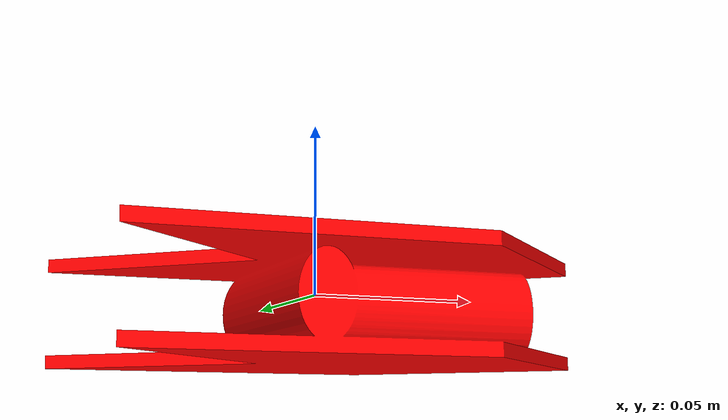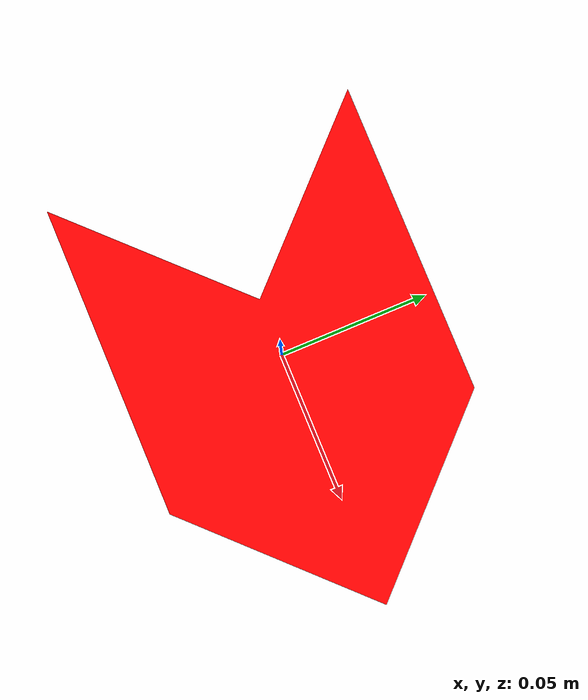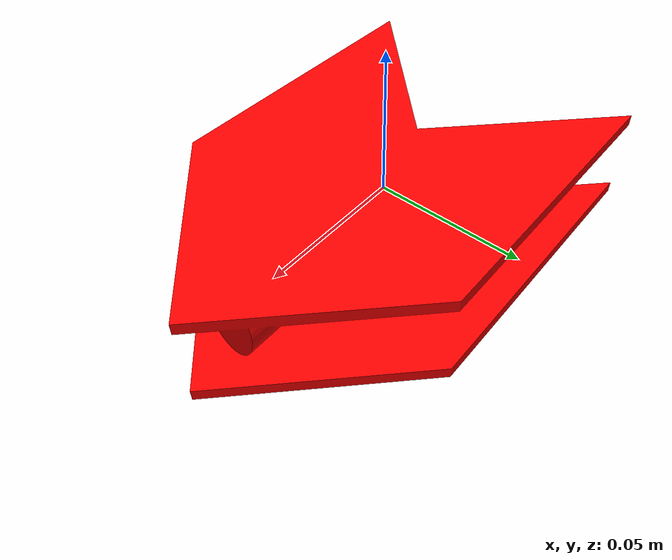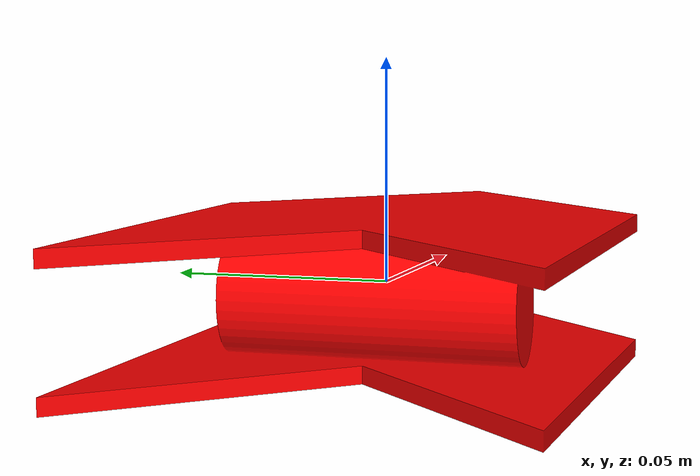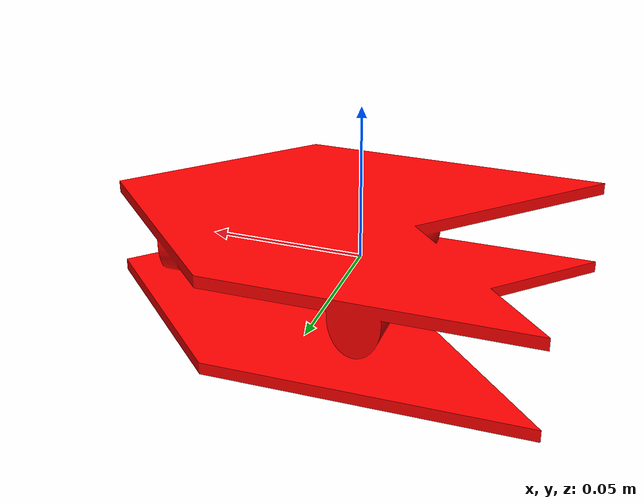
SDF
<?xml version="1.0"?>
<sdf version="1.11">  <model name="robosub23_chevron">
    <link name="chevron">
      <inertial>
        <pose>0 0 0 0 0 0</pose>
        <mass>0.1</mass>
        <inertia>
          <ixx>0.0004</ixx>
          <ixy>0</ixy>
          <ixz>0</ixz>
          <iyy>0.001</iyy>
          <iyz>0</iyz>
          <izz>0.001</izz>
        </inertia>
      </inertial>

      <visual name="chevron_visual">
        <pose>0 0 0 0 0 0</pose>
        <geometry>
          <mesh>
            <scale>1 1 1</scale>
            <uri>model://robosub23_chevron/chevron.stl</uri>
          </mesh>
        </geometry>
        <material>
          <ambient>1 0 0</ambient>
          <diffuse>1 0 0</diffuse>
          <specular>0.1 0.1 0.1 1</specular>
        </material>
      </visual>

      <collision name="chevron_collision">
        <pose>0 0 0 0 0 0</pose>
        <geometry>
          <mesh>
            <scale>1 1 1</scale>
            <uri>model://robosub23_chevron/chevron.stl</uri>
          </mesh>
        </geometry>
      </collision>
    </link>
  </model>
</sdf>
